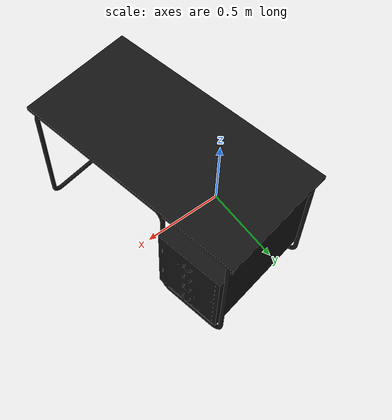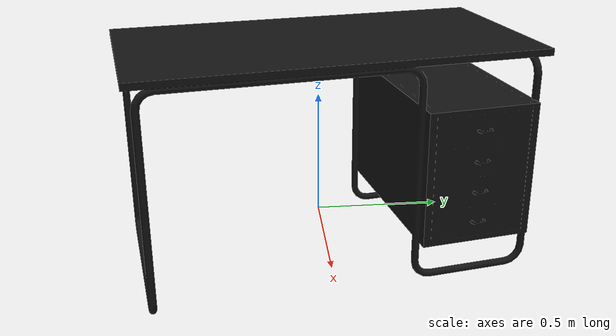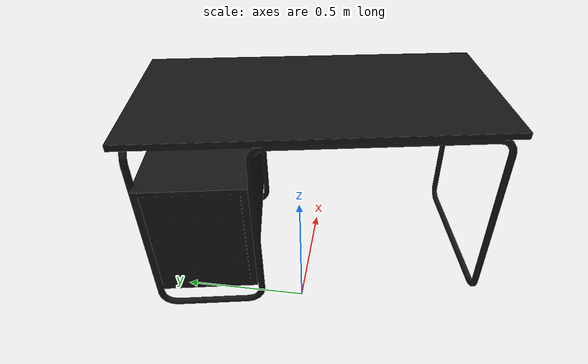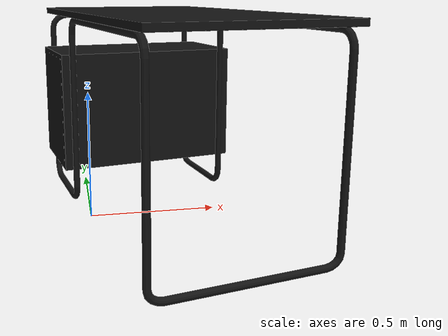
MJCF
<mujoco>

    <asset>
        <mesh name="desk_mesh" file="asset/desk/desk.obj" scale="1.015 1.015 1.015"/>
        <material name="desk_mtl" rgba="0.08 0.08 0.08 1" specular="0.5"/>
    </asset>
    <worldbody>
        <body name="desk_obj" pos="0.2 0 0">
            <geom
                type="mesh"
                mesh="desk_mesh"
                material="desk_mtl"
                mass="100.0"
                group="0"
                condim="3"
            />
        </body>
    </worldbody>
</mujoco>
